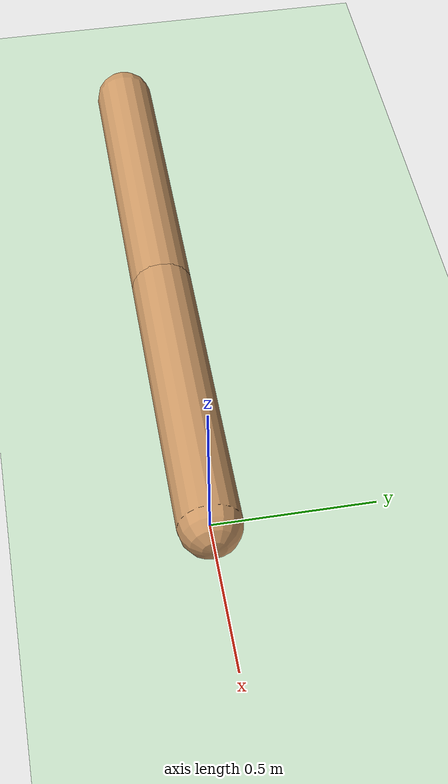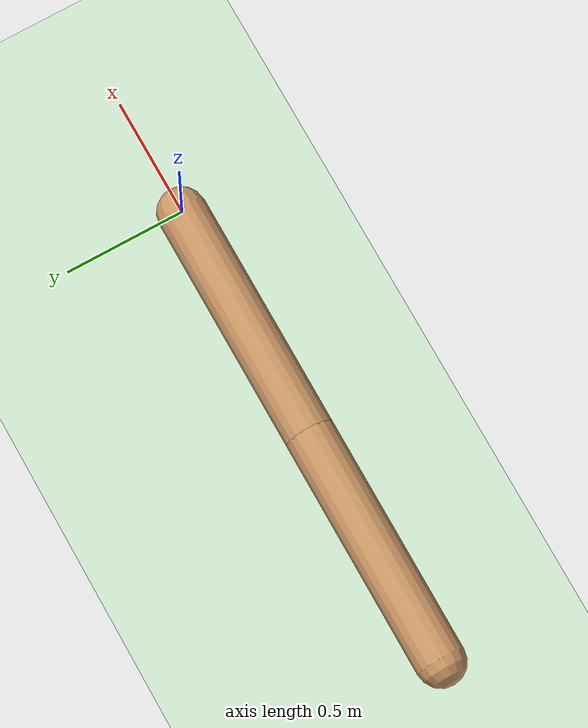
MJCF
<mujoco model="swimmer">
    <compiler angle="degree" coordinate="local" inertiafromgeom="true"/>
    <option collision="predefined" density="1000" integrator="RK4" timestep="0.005" viscosity="0.0009"/>
    <default>
        <geom conaffinity="1" condim="1" contype="1" material="geom" rgba="0.8 0.6 .4 1"/>
        <joint armature='0.1'/>
    </default>
    <asset>
        <texture builtin="gradient" height="100" rgb1="1 1 1" rgb2="0 0 0" type="skybox" width="100"/>
        <texture builtin="flat" height="1278" mark="cross" markrgb="1 1 1" name="texgeom" random="0.01"
                 rgb1="0.8 0.6 0.4" rgb2="0.8 0.6 0.4" type="cube" width="127"/>
        <texture builtin="checker" height="100" name="texplane" rgb1="0 0 0" rgb2="0.8 0.8 0.8" type="2d" width="100"/>
        <material name="MatPlane" reflectance="0.5" shininess="1" specular="1" texrepeat="30 30" texture="texplane"/>
        <material name="geom" texture="texgeom" texuniform="true"/>
    </asset>
    <worldbody>
        <light cutoff="100" diffuse="1 1 1" dir="-0 0 -1.3" directional="true" exponent="1" pos="0 0 1.3"
               specular=".1 .1 .1"/>
        <geom conaffinity="1" condim="3" material="MatPlane" name="floor" pos="0 0 -0.1" rgba="0.8 0.9 0.8 1"
              size="40 40 0.1" type="plane"/>
        <!--  ================= SWIMMER ================= /-->
        <body name="torso" pos="0 0 0">
            <camera name="track" mode="trackcom" pos="0 -3 3" xyaxes="1 0 0 0 1 1"/>
            <geom density="1000" fromto="0 0 0 -1 0 0" size="0.1" type="capsule"/>
            <joint axis="1 0 0" name="slider1" pos="0 0 0" type="slide"/>
            <joint axis="0 1 0" name="slider2" pos="0 0 0" type="slide"/>
            <joint axis="0 0 1" name="rot" pos="0 0 0" type="hinge"/>
            <body name="body1" pos="-1 0 0">
                <geom density="1000" fromto="0 0 0 -1 0 0" size=".1" type="capsule"/>
                <joint axis="0 0 1" limited="true" name="rot1" pos="0 0 0" range="-100 100" type="hinge"/>
                <site name="site1"/>
            </body>
        </body>
    </worldbody>

    <sensor>
        <gyro name="gyro1" site="site1"/>
    </sensor>

    <actuator>
        <motor ctrllimited="true" ctrlrange="-1 1" forcelimited="true" forcerange="-20 20" gear="1" joint="rot1"/>
    </actuator>
</mujoco>
